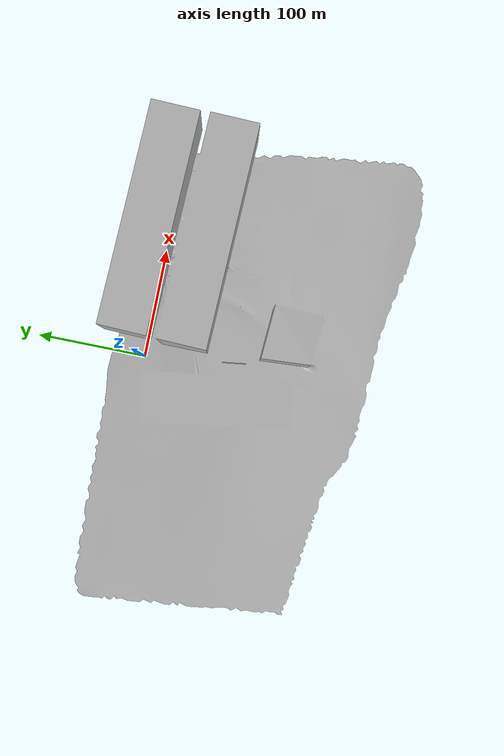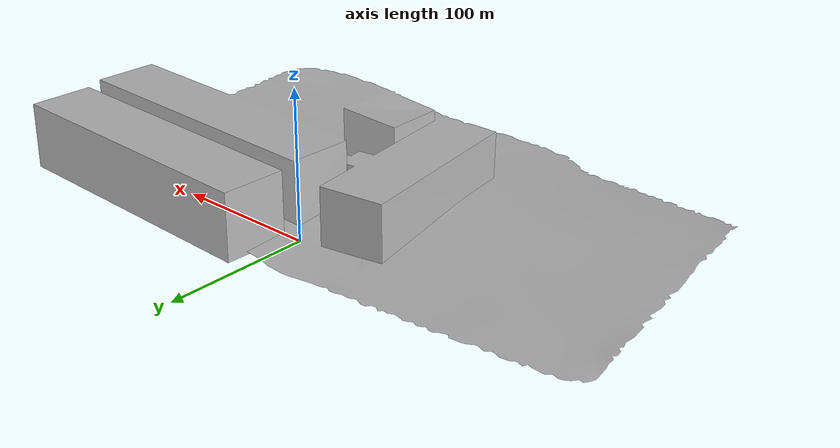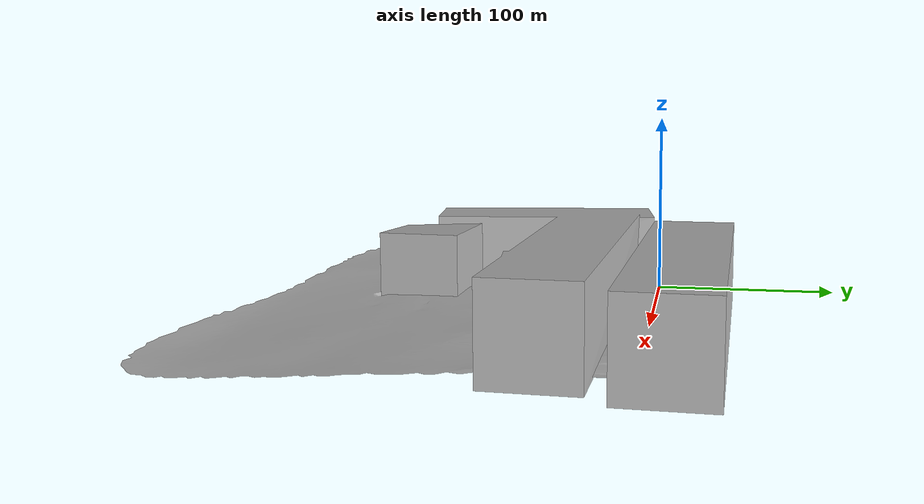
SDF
<?xml version="1.0" ?>
<sdf version="1.6">
  <model name="farm_ground">
    <static>true</static>
    <link name="ground_link">
      <visual name="farm_visual">
        <geometry>
          <mesh>
            <uri>model://farm_ground/meshes/farm_ground.dae</uri>
            <scale>1 1 1</scale>
          </mesh>
        </geometry>
      </visual>
      <collision name="farm_collision">
        <geometry>
          <mesh>
            <uri>model://farm_ground/meshes/farm_ground_collision.dae</uri>
            <scale>1 1 1</scale>
          </mesh>
        </geometry>
      </collision>
    </link>
  </model>
</sdf>
